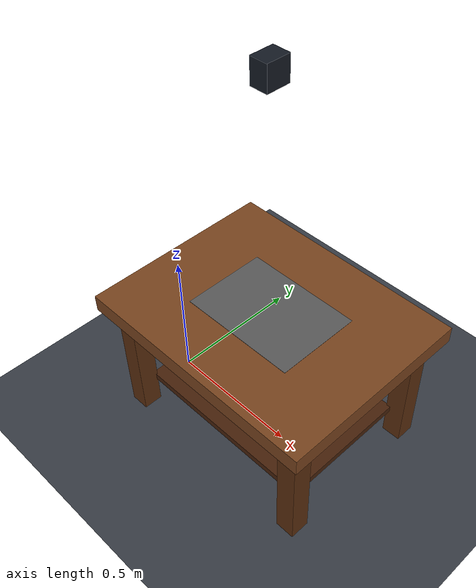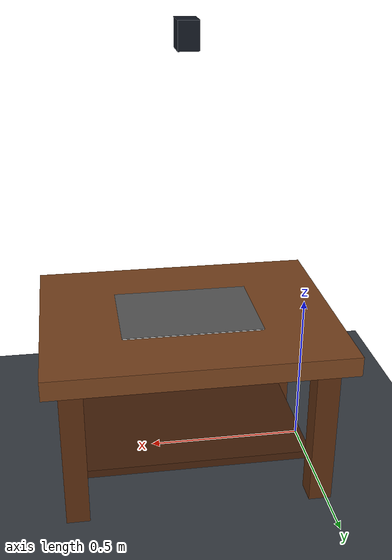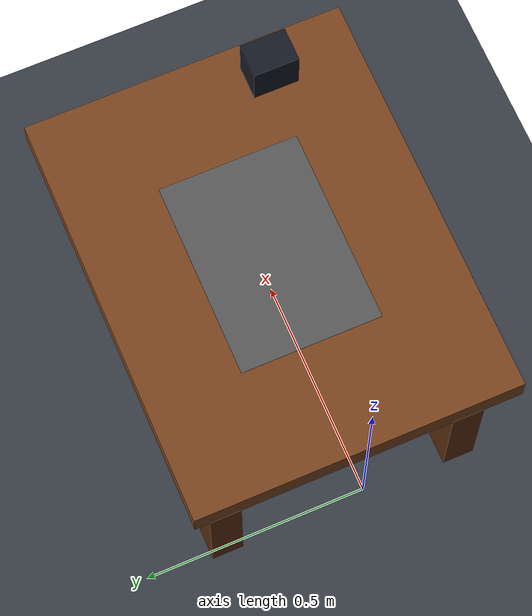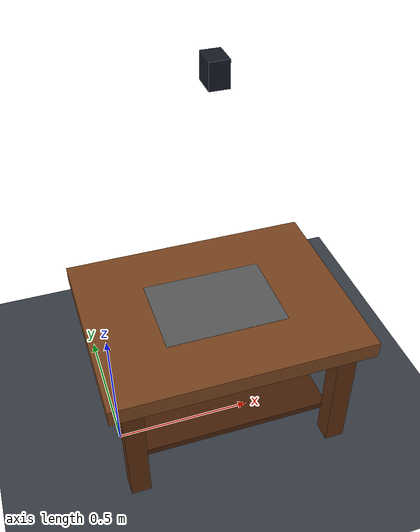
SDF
<?xml version="1.0" ?>
<!-- Self-contained Gazebo world for the UR5e writing demonstration. -->
<sdf version="1.6">
  <world name="vla_writing_world">
    <gravity>0 0 -9.81</gravity>
    <magnetic_field>6e-06 2.3e-05 -4.2e-05</magnetic_field>
    <atmosphere type="adiabatic"/>

    <physics type="ode">
      <max_step_size>0.001</max_step_size>
      <real_time_factor>1</real_time_factor>
      <real_time_update_rate>1000</real_time_update_rate>
      <ode>
        <solver><type>quick</type><iters>80</iters><sor>1.3</sor></solver>
        <constraints><cfm>0.0</cfm><erp>0.2</erp><contact_max_correcting_vel>1.0</contact_max_correcting_vel><contact_surface_layer>0.001</contact_surface_layer></constraints>
      </ode>
    </physics>

    <scene>
      <ambient>0.42 0.42 0.42 1</ambient>
      <background>0.72 0.76 0.82 1</background>
      <shadows>true</shadows>
      <grid>false</grid>
    </scene>

    <light name="sun" type="directional">
      <cast_shadows>true</cast_shadows>
      <pose>0 0 2.5 0.25 -0.45 0.25</pose>
      <diffuse>0.85 0.85 0.82 1</diffuse>
      <specular>0.25 0.25 0.25 1</specular>
      <direction>-0.25 0.35 -0.90</direction>
    </light>
    <light name="fill" type="point">
      <pose>-0.5 -0.8 1.8 0 0 0</pose>
      <diffuse>0.55 0.60 0.70 1</diffuse>
      <specular>0.10 0.10 0.10 1</specular>
      <attenuation><range>4</range><constant>0.5</constant><linear>0.02</linear><quadratic>0.01</quadratic></attenuation>
    </light>

    <model name="ground_plane">
      <static>true</static>
      <link name="ground_link">
        <collision name="collision"><geometry><plane><normal>0 0 1</normal><size>20 20</size></plane></geometry></collision>
        <visual name="visual">
          <geometry><plane><normal>0 0 1</normal><size>20 20</size></plane></geometry>
          <material><ambient>0.16 0.18 0.20 1</ambient><diffuse>0.22 0.24 0.27 1</diffuse></material>
        </visual>
      </link>
    </model>

    <!-- The table centre is aligned under the paper at (0.39, 0.0515) m;
         its top face is z=0.517 m.  The paper lower face rests on this
         surface and its visible top is z=0.521 m. -->
    <include>
      <uri>model://writing_table</uri>
      <name>writing_table</name>
      <pose>0.39 0.0515 0 0 0 0</pose>
    </include>
    <!-- The paper model's origin is its top-left corner in X/Y; its link pose
         supplies the physical 4-mm thickness above the table. -->
    <include>
      <uri>model://writing_paper</uri>
      <name>writing_paper</name>
      <pose>0.18 0.20 0 0 0 0</pose>
    </include>
    <!-- Camera is centred on the sheet. -->
    <include>
      <uri>model://paper_camera</uri>
      <name>paper_camera</name>
      <pose>0.39 0.0515 0 0 0 0</pose>
    </include>

    <gui fullscreen="0">
      <camera name="user_camera">
        <pose>1.75 -2.10 1.65 0.75 0.0 2.20</pose>
        <view_controller>orbit</view_controller>
      </camera>
    </gui>
  </world>
</sdf>

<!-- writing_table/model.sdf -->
<sdf version="1.6">
  <model name="writing_table">
    <static>true</static>

    <!-- A 0.9 m x 0.70 m work surface; top face is z=0.517 m so the
         4-mm paper rests flush with it. -->
    <link name="table_top">
      <pose>0 0 0.487 0 0 0</pose>
      <collision name="collision">
        <geometry><box><size>0.90 0.70 0.06</size></box></geometry>
      </collision>
      <visual name="visual">
        <geometry><box><size>0.90 0.70 0.06</size></box></geometry>
        <material>
          <ambient>0.20 0.11 0.055 1</ambient>
          <diffuse>0.48 0.27 0.12 1</diffuse>
          <specular>0.12 0.08 0.04 1</specular>
        </material>
      </visual>
    </link>

    <!-- Four square legs.  They are separate links because a static SDF model
         does not need joints; this keeps the model simple and robust in Gazebo. -->
    <link name="leg_front_left">
      <pose>-0.37 -0.27 0.23 0 0 0</pose>
      <collision name="collision"><geometry><box><size>0.07 0.07 0.46</size></box></geometry></collision>
      <visual name="visual"><geometry><box><size>0.07 0.07 0.46</size></box></geometry><material><ambient>0.16 0.08 0.03 1</ambient><diffuse>0.36 0.18 0.06 1</diffuse></material></visual>
    </link>
    <link name="leg_front_right">
      <pose>0.37 -0.27 0.23 0 0 0</pose>
      <collision name="collision"><geometry><box><size>0.07 0.07 0.46</size></box></geometry></collision>
      <visual name="visual"><geometry><box><size>0.07 0.07 0.46</size></box></geometry><material><ambient>0.16 0.08 0.03 1</ambient><diffuse>0.36 0.18 0.06 1</diffuse></material></visual>
    </link>
    <link name="leg_back_left">
      <pose>-0.37 0.27 0.23 0 0 0</pose>
      <collision name="collision"><geometry><box><size>0.07 0.07 0.46</size></box></geometry></collision>
      <visual name="visual"><geometry><box><size>0.07 0.07 0.46</size></box></geometry><material><ambient>0.16 0.08 0.03 1</ambient><diffuse>0.36 0.18 0.06 1</diffuse></material></visual>
    </link>
    <link name="leg_back_right">
      <pose>0.37 0.27 0.23 0 0 0</pose>
      <collision name="collision"><geometry><box><size>0.07 0.07 0.46</size></box></geometry></collision>
      <visual name="visual"><geometry><box><size>0.07 0.07 0.46</size></box></geometry><material><ambient>0.16 0.08 0.03 1</ambient><diffuse>0.36 0.18 0.06 1</diffuse></material></visual>
    </link>

    <!-- A thin lower shelf improves the scene silhouette without interfering
         with the arm's writing workspace. -->
    <link name="lower_shelf">
      <pose>0 0 0.12 0 0 0</pose>
      <collision name="collision"><geometry><box><size>0.70 0.48 0.025</size></box></geometry></collision>
      <visual name="visual"><geometry><box><size>0.70 0.48 0.025</size></box></geometry><material><ambient>0.12 0.06 0.02 1</ambient><diffuse>0.28 0.13 0.04 1</diffuse></material></visual>
    </link>
  </model>
</sdf>

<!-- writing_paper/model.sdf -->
<sdf version="1.6">
  <model name="writing_paper">
    <static>true</static>
    <link name="paper_link">
      <!-- Model origin is the paper's top-left corner.  +X is right and +Y
           is toward the top edge; the sheet therefore occupies
           x=[0,0.42], y=[-0.297,0]. -->
      <!-- The table top is z=0.517.  With 4-mm stock the lower face rests
           on that surface and the visible top/ink plane is z=0.521. -->
      <pose>0 0 0.519 0 0 0</pose>
      <collision name="collision">
        <pose>0.21 -0.1485 0 0 0 0</pose>
        <geometry><box><size>0.42 0.297 0.004</size></box></geometry>
      </collision>
      <visual name="paper_visual">
        <!-- Link centre z=0.515 and thickness 0.004 put the top face at
             z=0.517; the ink anchor below is placed exactly on that face. -->
        <pose>0.21 -0.1485 0 0 0 0</pose>
        <geometry><box><size>0.42 0.297 0.004</size></box></geometry>
        <material>
          <ambient>0.86 0.86 0.86 1</ambient>
          <diffuse>0.98 0.98 0.98 1</diffuse>
          <specular>0.15 0.15 0.15 1</specular>
        </material>
      </visual>
      <!-- Invisible top-left anchor.  The visual plugin is attached here so
           its local coordinates match the planner's paper_frame exactly. -->
      <visual name="ink_anchor_visual">
        <!-- Anchor is exactly at the visible top-paper reference plane. -->
        <pose>0 0 0.002 0 0 0</pose>
        <geometry><box><size>0.001 0.001 0.001</size></box></geometry>
        <material>
          <ambient>0 0 0 0</ambient>
          <diffuse>0 0 0 0</diffuse>
          <transparency>1.0</transparency>
        </material>
        <plugin name="ink_visual_plugin" filename="libink_visual_plugin.so">
          <paper_width>0.420</paper_width>
          <paper_height>0.297</paper_height>
          <write_z>0.0015</write_z>
          <contact_threshold>0.003</contact_threshold>
          <z_offset>0.0005</z_offset>
          <min_point_distance>0.001</min_point_distance>
          <pen_name_hint>pen_tip_visual</pen_name_hint>
          <material>Gazebo/Black</material>
        </plugin>
      </visual>
    </link>
    <!-- A very thin dark edge makes the sheet visible in the wide Gazebo shot. -->
    <link name="paper_border">
      <!-- This link uses model coordinates, not paper_link coordinates. -->
      <pose>0.21 -0.1485 0.5215 0 0 0</pose>
      <visual name="border_visual">
        <geometry><box><size>0.425 0.302 0.001</size></box></geometry>
        <material><ambient>0.20 0.20 0.20 1</ambient><diffuse>0.35 0.35 0.35 1</diffuse></material>
      </visual>
    </link>
  </model>
</sdf>

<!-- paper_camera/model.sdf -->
<sdf version="1.6">
  <model name="paper_camera">
    <static>true</static>
    <link name="camera_link">
      <!-- Gazebo cameras look along +X in their local frame.  Pitch +90 deg
           points +X down along world -Z. -->
      <pose>0 0 1.35 0 1.57079632679 0</pose>
      <inertial><mass>0.05</mass><inertia><ixx>0.0001</ixx><iyy>0.0001</iyy><izz>0.0001</izz><ixy>0</ixy><ixz>0</ixz><iyz>0</iyz></inertia></inertial>
      <collision name="collision"><geometry><box><size>0.08 0.08 0.06</size></box></geometry></collision>
      <visual name="visual">
        <geometry><box><size>0.08 0.08 0.06</size></box></geometry>
        <material><ambient>0.04 0.05 0.07 1</ambient><diffuse>0.08 0.10 0.14 1</diffuse></material>
      </visual>
      <sensor name="paper_camera_sensor" type="camera">
        <always_on>true</always_on>
        <update_rate>30.0</update_rate>
        <visualize>true</visualize>
        <camera>
          <horizontal_fov>1.0</horizontal_fov>
          <image><width>800</width><height>600</height><format>R8G8B8</format></image>
          <clip><near>0.05</near><far>5.0</far></clip>
        </camera>
        <plugin name="paper_camera_controller" filename="libgazebo_ros_camera.so">
          <alwaysOn>true</alwaysOn>
          <updateRate>30.0</updateRate>
          <cameraName>paper_camera</cameraName>
          <imageTopicName>image_raw</imageTopicName>
          <cameraInfoTopicName>camera_info</cameraInfoTopicName>
          <frameName>paper_camera_optical_frame</frameName>
          <robotNamespace>/vla</robotNamespace>
        </plugin>
      </sensor>
    </link>
  </model>
</sdf>
